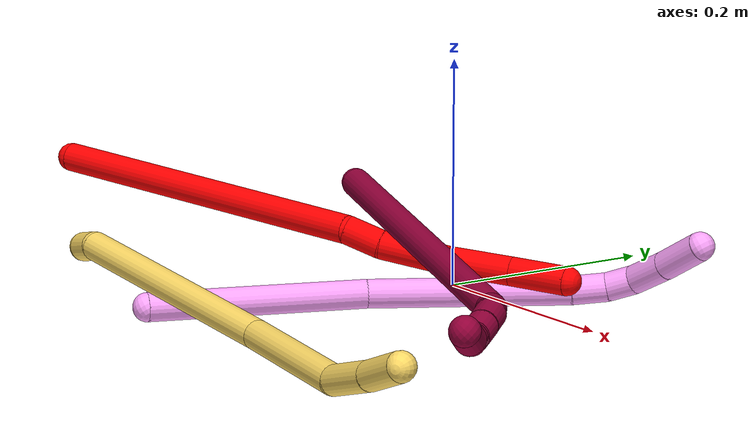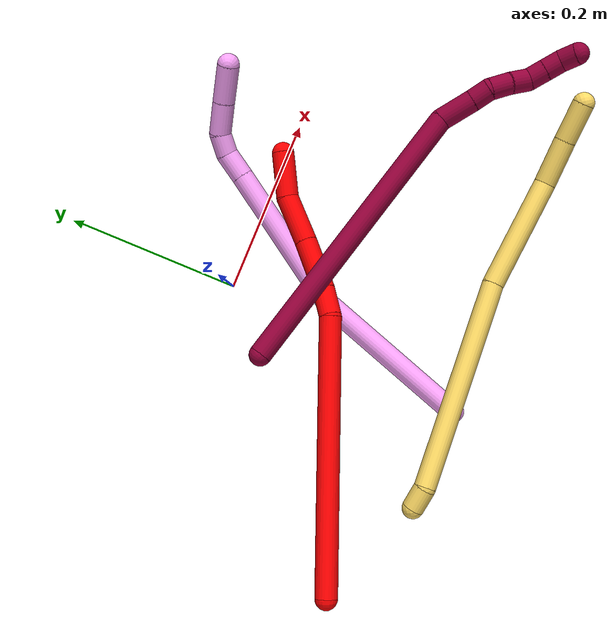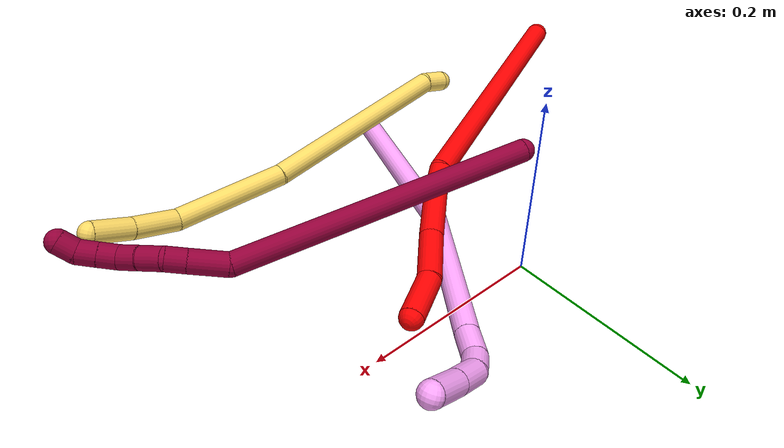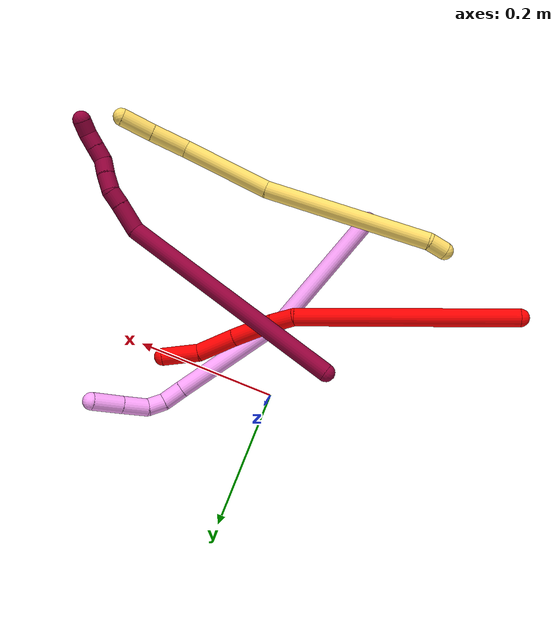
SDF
<sdf version="1.7">
 <world name="default">
  <model name="2">
   <static>0</static>
   <link name="2">
    <collision name="collision-cylinder-e_1_1_4">
     <pose>-0.004816 0.015484 -0.150433 -3.03902 -0.031833 0.601417</pose>
     <geometry><cylinder><radius>0.0125</radius><length>0.30261</length></cylinder></geometry>
     <surface>
      <friction><ode><mu>1.16</mu><mu2>1.16</mu2><slip1>0</slip1><slip2>0</slip2></ode></friction>
      <contact><ode><kp>1e+06</kp><kd>1</kd><max_vel>0</max_vel><min_depth>0.001</min_depth></ode></contact>
     </surface>
    </collision>
    <visual name="visual-cylinder-e_1_1_4">
     <pose>-0.004816 0.015484 -0.150433 -3.03902 -0.031833 0.601417</pose>
     <geometry><cylinder><radius>0.0125</radius><length>0.30261</length></cylinder></geometry>
     <material><ambient>1 0 0 1</ambient></material>
    </visual>
    <collision name="collision-cylinder-e_2_4_5">
     <pose>-0.006245 0.036367 -0.315957 -2.79801 0.20823 -1.08415</pose>
     <geometry><cylinder><radius>0.0125</radius><length>0.032761</length></cylinder></geometry>
     <surface>
      <friction><ode><mu>1.16</mu><mu2>1.16</mu2><slip1>0</slip1><slip2>0</slip2></ode></friction>
      <contact><ode><kp>1e+06</kp><kd>1</kd><max_vel>0</max_vel><min_depth>0.001</min_depth></ode></contact>
     </surface>
    </collision>
    <visual name="visual-cylinder-e_2_4_5">
     <pose>-0.006245 0.036367 -0.315957 -2.79801 0.20823 -1.08415</pose>
     <geometry><cylinder><radius>0.0125</radius><length>0.032761</length></cylinder></geometry>
     <material><ambient>1 0 0 1</ambient></material>
    </visual>
    <collision name="collision-cylinder-e_3_5_6">
     <pose>0.006646 0.047292 -0.358323 -2.94168 0.329103 -2.05492</pose>
     <geometry><cylinder><radius>0.0125</radius><length>0.058817</length></cylinder></geometry>
     <surface>
      <friction><ode><mu>1.16</mu><mu2>1.16</mu2><slip1>0</slip1><slip2>0</slip2></ode></friction>
      <contact><ode><kp>1e+06</kp><kd>1</kd><max_vel>0</max_vel><min_depth>0.001</min_depth></ode></contact>
     </surface>
    </collision>
    <visual name="visual-cylinder-e_3_5_6">
     <pose>0.006646 0.047292 -0.358323 -2.94168 0.329103 -2.05492</pose>
     <geometry><cylinder><radius>0.0125</radius><length>0.058817</length></cylinder></geometry>
     <material><ambient>1 0 0 1</ambient></material>
    </visual>
    <collision name="collision-cylinder-e_4_6_7">
     <pose>0.026093 0.056404 -0.41065 -2.99944 0.374358 -2.42245</pose>
     <geometry><cylinder><radius>0.0125</radius><length>0.054379</length></cylinder></geometry>
     <surface>
      <friction><ode><mu>1.16</mu><mu2>1.16</mu2><slip1>0</slip1><slip2>0</slip2></ode></friction>
      <contact><ode><kp>1e+06</kp><kd>1</kd><max_vel>0</max_vel><min_depth>0.001</min_depth></ode></contact>
     </surface>
    </collision>
    <visual name="visual-cylinder-e_4_6_7">
     <pose>0.026093 0.056404 -0.41065 -2.99944 0.374358 -2.42245</pose>
     <geometry><cylinder><radius>0.0125</radius><length>0.054379</length></cylinder></geometry>
     <material><ambient>1 0 0 1</ambient></material>
    </visual>
    <collision name="collision-cylinder-e_5_7_2">
     <pose>0.038232 0.061562 -0.461275 -3.08019 0.085496 -1.8962</pose>
     <geometry><cylinder><radius>0.0125</radius><length>0.051434</length></cylinder></geometry>
     <surface>
      <friction><ode><mu>1.16</mu><mu2>1.16</mu2><slip1>0</slip1><slip2>0</slip2></ode></friction>
      <contact><ode><kp>1e+06</kp><kd>1</kd><max_vel>0</max_vel><min_depth>0.001</min_depth></ode></contact>
     </surface>
    </collision>
    <visual name="visual-cylinder-e_5_7_2">
     <pose>0.038232 0.061562 -0.461275 -3.08019 0.085496 -1.8962</pose>
     <geometry><cylinder><radius>0.0125</radius><length>0.051434</length></cylinder></geometry>
     <material><ambient>1 0 0 1</ambient></material>
    </visual>
    <collision name="collision-sphere-2">
     <pose>0.040428 0.063134 -0.48685 0 -0 0</pose>
     <geometry><sphere><radius>0.0125</radius></sphere></geometry>
     <surface>
      <friction><ode><mu>1.16</mu><mu2>1.16</mu2><slip1>0</slip1><slip2>0</slip2></ode></friction>
      <contact><ode><kp>1e+06</kp><kd>1</kd><max_vel>0</max_vel><min_depth>0.001</min_depth></ode></contact>
     </surface>
    </collision>
    <visual name="visual-sphere-2">
     <pose>0.040428 0.063134 -0.48685 0 -0 0</pose>
     <geometry><sphere><radius>0.0125</radius></sphere></geometry>
     <material><ambient>1 0 0 1</ambient></material>
    </visual>
    <collision name="collision-sphere-7">
     <pose>0.036036 0.05999 -0.435701 0 -0 0</pose>
     <geometry><sphere><radius>0.0125</radius></sphere></geometry>
     <surface>
      <friction><ode><mu>1.16</mu><mu2>1.16</mu2><slip1>0</slip1><slip2>0</slip2></ode></friction>
      <contact><ode><kp>1e+06</kp><kd>1</kd><max_vel>0</max_vel><min_depth>0.001</min_depth></ode></contact>
     </surface>
    </collision>
    <visual name="visual-sphere-7">
     <pose>0.036036 0.05999 -0.435701 0 -0 0</pose>
     <geometry><sphere><radius>0.0125</radius></sphere></geometry>
     <material><ambient>1 0 0 1</ambient></material>
    </visual>
    <collision name="collision-sphere-6">
     <pose>0.016151 0.052819 -0.385599 0 -0 0</pose>
     <geometry><sphere><radius>0.0125</radius></sphere></geometry>
     <surface>
      <friction><ode><mu>1.16</mu><mu2>1.16</mu2><slip1>0</slip1><slip2>0</slip2></ode></friction>
      <contact><ode><kp>1e+06</kp><kd>1</kd><max_vel>0</max_vel><min_depth>0.001</min_depth></ode></contact>
     </surface>
    </collision>
    <visual name="visual-sphere-6">
     <pose>0.016151 0.052819 -0.385599 0 -0 0</pose>
     <geometry><sphere><radius>0.0125</radius></sphere></geometry>
     <material><ambient>1 0 0 1</ambient></material>
    </visual>
    <collision name="collision-sphere-5">
     <pose>-0.002859 0.041766 -0.331046 0 -0 0</pose>
     <geometry><sphere><radius>0.0125</radius></sphere></geometry>
     <surface>
      <friction><ode><mu>1.16</mu><mu2>1.16</mu2><slip1>0</slip1><slip2>0</slip2></ode></friction>
      <contact><ode><kp>1e+06</kp><kd>1</kd><max_vel>0</max_vel><min_depth>0.001</min_depth></ode></contact>
     </surface>
    </collision>
    <visual name="visual-sphere-5">
     <pose>-0.002859 0.041766 -0.331046 0 -0 0</pose>
     <geometry><sphere><radius>0.0125</radius></sphere></geometry>
     <material><ambient>1 0 0 1</ambient></material>
    </visual>
    <collision name="collision-sphere-1">
     <geometry><sphere><radius>0.0125</radius></sphere></geometry>
     <surface>
      <friction><ode><mu>1.16</mu><mu2>1.16</mu2><slip1>0</slip1><slip2>0</slip2></ode></friction>
      <contact><ode><kp>1e+06</kp><kd>1</kd><max_vel>0</max_vel><min_depth>0.001</min_depth></ode></contact>
     </surface>
    </collision>
    <visual name="visual-sphere-1">
     <geometry><sphere><radius>0.0125</radius></sphere></geometry>
     <material><ambient>1 0 0 1</ambient></material>
    </visual>
    <collision name="collision-sphere-4">
     <pose>-0.009631 0.030968 -0.300867 0 -0 0</pose>
     <geometry><sphere><radius>0.0125</radius></sphere></geometry>
     <surface>
      <friction><ode><mu>1.16</mu><mu2>1.16</mu2><slip1>0</slip1><slip2>0</slip2></ode></friction>
      <contact><ode><kp>1e+06</kp><kd>1</kd><max_vel>0</max_vel><min_depth>0.001</min_depth></ode></contact>
     </surface>
    </collision>
    <visual name="visual-sphere-4">
     <pose>-0.009631 0.030968 -0.300867 0 -0 0</pose>
     <geometry><sphere><radius>0.0125</radius></sphere></geometry>
     <material><ambient>1 0 0 1</ambient></material>
    </visual>
    <inertial>
     <pose>0.004229 0.029784 -0.24601 0 -0 0</pose>
     <mass>0.5</mass>
     <inertia>
      <ixx>0.003165</ixx>
      <ixy>0</ixy>
      <ixz>0</ixz>
      <iyy>-0.000599</iyy>
      <iyz>0</iyz>
      <izz>-0.000223</izz>
     </inertia>
    </inertial>
   </link>
   <pose>-0.271286 -0.227524 0.094287 -1.57854 0.003305 1.97951</pose>
  </model>
  <model name="4">
   <static>0</static>
   <link name="4">
    <collision name="collision-cylinder-e_1_1_4">
     <pose>0.075003 0.04784 0.033656 -0.957719 0.908453 -0.496532</pose>
     <geometry><cylinder><radius>0.0125</radius><length>0.190229</length></cylinder></geometry>
     <surface>
      <friction><ode><mu>1.16</mu><mu2>1.16</mu2><slip1>0</slip1><slip2>0</slip2></ode></friction>
      <contact><ode><kp>1e+06</kp><kd>1</kd><max_vel>0</max_vel><min_depth>0.001</min_depth></ode></contact>
     </surface>
    </collision>
    <visual name="visual-cylinder-e_1_1_4">
     <pose>0.075003 0.04784 0.033656 -0.957719 0.908453 -0.496532</pose>
     <geometry><cylinder><radius>0.0125</radius><length>0.190229</length></cylinder></geometry>
     <material><ambient>1 0.65098 0.996078 1</ambient></material>
    </visual>
    <collision name="collision-cylinder-e_2_4_5">
     <pose>0.202001 0.153567 0.105967 -0.982024 0.64156 -0.351638</pose>
     <geometry><cylinder><radius>0.0125</radius><length>0.173766</length></cylinder></geometry>
     <surface>
      <friction><ode><mu>1.16</mu><mu2>1.16</mu2><slip1>0</slip1><slip2>0</slip2></ode></friction>
      <contact><ode><kp>1e+06</kp><kd>1</kd><max_vel>0</max_vel><min_depth>0.001</min_depth></ode></contact>
     </surface>
    </collision>
    <visual name="visual-cylinder-e_2_4_5">
     <pose>0.202001 0.153567 0.105967 -0.982024 0.64156 -0.351638</pose>
     <geometry><cylinder><radius>0.0125</radius><length>0.173766</length></cylinder></geometry>
     <material><ambient>1 0.65098 0.996078 1</ambient></material>
    </visual>
    <collision name="collision-cylinder-e_3_5_6">
     <pose>0.263481 0.22219 0.150421 -1.07566 0.660833 -0.403609</pose>
     <geometry><cylinder><radius>0.0125</radius><length>0.03091</length></cylinder></geometry>
     <surface>
      <friction><ode><mu>1.16</mu><mu2>1.16</mu2><slip1>0</slip1><slip2>0</slip2></ode></friction>
      <contact><ode><kp>1e+06</kp><kd>1</kd><max_vel>0</max_vel><min_depth>0.001</min_depth></ode></contact>
     </surface>
    </collision>
    <visual name="visual-cylinder-e_3_5_6">
     <pose>0.263481 0.22219 0.150421 -1.07566 0.660833 -0.403609</pose>
     <geometry><cylinder><radius>0.0125</radius><length>0.03091</length></cylinder></geometry>
     <material><ambient>1 0.65098 0.996078 1</ambient></material>
    </visual>
    <collision name="collision-cylinder-e_4_6_7">
     <pose>0.277178 0.244214 0.159168 -1.31518 0.346372 -0.268567</pose>
     <geometry><cylinder><radius>0.0125</radius><length>0.024807</length></cylinder></geometry>
     <surface>
      <friction><ode><mu>1.16</mu><mu2>1.16</mu2><slip1>0</slip1><slip2>0</slip2></ode></friction>
      <contact><ode><kp>1e+06</kp><kd>1</kd><max_vel>0</max_vel><min_depth>0.001</min_depth></ode></contact>
     </surface>
    </collision>
    <visual name="visual-cylinder-e_4_6_7">
     <pose>0.277178 0.244214 0.159168 -1.31518 0.346372 -0.268567</pose>
     <geometry><cylinder><radius>0.0125</radius><length>0.024807</length></cylinder></geometry>
     <material><ambient>1 0.65098 0.996078 1</ambient></material>
    </visual>
    <collision name="collision-cylinder-e_5_7_8">
     <pose>0.279495 0.273896 0.164322 -1.45152 -0.101885 0.09042</pose>
     <geometry><cylinder><radius>0.0125</radius><length>0.037246</length></cylinder></geometry>
     <surface>
      <friction><ode><mu>1.16</mu><mu2>1.16</mu2><slip1>0</slip1><slip2>0</slip2></ode></friction>
      <contact><ode><kp>1e+06</kp><kd>1</kd><max_vel>0</max_vel><min_depth>0.001</min_depth></ode></contact>
     </surface>
    </collision>
    <visual name="visual-cylinder-e_5_7_8">
     <pose>0.279495 0.273896 0.164322 -1.45152 -0.101885 0.09042</pose>
     <geometry><cylinder><radius>0.0125</radius><length>0.037246</length></cylinder></geometry>
     <material><ambient>1 0.65098 0.996078 1</ambient></material>
    </visual>
    <collision name="collision-cylinder-e_6_8_2">
     <pose>0.275073 0.313616 0.167945 -1.50439 -0.117701 0.110149</pose>
     <geometry><cylinder><radius>0.0125</radius><length>0.043042</length></cylinder></geometry>
     <surface>
      <friction><ode><mu>1.16</mu><mu2>1.16</mu2><slip1>0</slip1><slip2>0</slip2></ode></friction>
      <contact><ode><kp>1e+06</kp><kd>1</kd><max_vel>0</max_vel><min_depth>0.001</min_depth></ode></contact>
     </surface>
    </collision>
    <visual name="visual-cylinder-e_6_8_2">
     <pose>0.275073 0.313616 0.167945 -1.50439 -0.117701 0.110149</pose>
     <geometry><cylinder><radius>0.0125</radius><length>0.043042</length></cylinder></geometry>
     <material><ambient>1 0.65098 0.996078 1</ambient></material>
    </visual>
    <collision name="collision-sphere-2">
     <pose>0.272546 0.334941 0.169363 0 -0 0</pose>
     <geometry><sphere><radius>0.0125</radius></sphere></geometry>
     <surface>
      <friction><ode><mu>1.16</mu><mu2>1.16</mu2><slip1>0</slip1><slip2>0</slip2></ode></friction>
      <contact><ode><kp>1e+06</kp><kd>1</kd><max_vel>0</max_vel><min_depth>0.001</min_depth></ode></contact>
     </surface>
    </collision>
    <visual name="visual-sphere-2">
     <pose>0.272546 0.334941 0.169363 0 -0 0</pose>
     <geometry><sphere><radius>0.0125</radius></sphere></geometry>
     <material><ambient>1 0.65098 0.996078 1</ambient></material>
    </visual>
    <collision name="collision-sphere-4">
     <pose>0.150006 0.09568 0.067312 0 -0 0</pose>
     <geometry><sphere><radius>0.0125</radius></sphere></geometry>
     <surface>
      <friction><ode><mu>1.16</mu><mu2>1.16</mu2><slip1>0</slip1><slip2>0</slip2></ode></friction>
      <contact><ode><kp>1e+06</kp><kd>1</kd><max_vel>0</max_vel><min_depth>0.001</min_depth></ode></contact>
     </surface>
    </collision>
    <visual name="visual-sphere-4">
     <pose>0.150006 0.09568 0.067312 0 -0 0</pose>
     <geometry><sphere><radius>0.0125</radius></sphere></geometry>
     <material><ambient>1 0.65098 0.996078 1</ambient></material>
    </visual>
    <collision name="collision-sphere-1">
     <geometry><sphere><radius>0.0125</radius></sphere></geometry>
     <surface>
      <friction><ode><mu>1.16</mu><mu2>1.16</mu2><slip1>0</slip1><slip2>0</slip2></ode></friction>
      <contact><ode><kp>1e+06</kp><kd>1</kd><max_vel>0</max_vel><min_depth>0.001</min_depth></ode></contact>
     </surface>
    </collision>
    <visual name="visual-sphere-1">
     <geometry><sphere><radius>0.0125</radius></sphere></geometry>
     <material><ambient>1 0.65098 0.996078 1</ambient></material>
    </visual>
    <collision name="collision-sphere-8">
     <pose>0.277601 0.292291 0.166527 0 -0 0</pose>
     <geometry><sphere><radius>0.0125</radius></sphere></geometry>
     <surface>
      <friction><ode><mu>1.16</mu><mu2>1.16</mu2><slip1>0</slip1><slip2>0</slip2></ode></friction>
      <contact><ode><kp>1e+06</kp><kd>1</kd><max_vel>0</max_vel><min_depth>0.001</min_depth></ode></contact>
     </surface>
    </collision>
    <visual name="visual-sphere-8">
     <pose>0.277601 0.292291 0.166527 0 -0 0</pose>
     <geometry><sphere><radius>0.0125</radius></sphere></geometry>
     <material><ambient>1 0.65098 0.996078 1</ambient></material>
    </visual>
    <collision name="collision-sphere-5">
     <pose>0.253995 0.211454 0.144623 0 -0 0</pose>
     <geometry><sphere><radius>0.0125</radius></sphere></geometry>
     <surface>
      <friction><ode><mu>1.16</mu><mu2>1.16</mu2><slip1>0</slip1><slip2>0</slip2></ode></friction>
      <contact><ode><kp>1e+06</kp><kd>1</kd><max_vel>0</max_vel><min_depth>0.001</min_depth></ode></contact>
     </surface>
    </collision>
    <visual name="visual-sphere-5">
     <pose>0.253995 0.211454 0.144623 0 -0 0</pose>
     <geometry><sphere><radius>0.0125</radius></sphere></geometry>
     <material><ambient>1 0.65098 0.996078 1</ambient></material>
    </visual>
    <collision name="collision-sphere-6">
     <pose>0.272967 0.232926 0.156218 0 -0 0</pose>
     <geometry><sphere><radius>0.0125</radius></sphere></geometry>
     <surface>
      <friction><ode><mu>1.16</mu><mu2>1.16</mu2><slip1>0</slip1><slip2>0</slip2></ode></friction>
      <contact><ode><kp>1e+06</kp><kd>1</kd><max_vel>0</max_vel><min_depth>0.001</min_depth></ode></contact>
     </surface>
    </collision>
    <visual name="visual-sphere-6">
     <pose>0.272967 0.232926 0.156218 0 -0 0</pose>
     <geometry><sphere><radius>0.0125</radius></sphere></geometry>
     <material><ambient>1 0.65098 0.996078 1</ambient></material>
    </visual>
    <collision name="collision-sphere-7">
     <pose>0.281389 0.255502 0.162118 0 -0 0</pose>
     <geometry><sphere><radius>0.0125</radius></sphere></geometry>
     <surface>
      <friction><ode><mu>1.16</mu><mu2>1.16</mu2><slip1>0</slip1><slip2>0</slip2></ode></friction>
      <contact><ode><kp>1e+06</kp><kd>1</kd><max_vel>0</max_vel><min_depth>0.001</min_depth></ode></contact>
     </surface>
    </collision>
    <visual name="visual-sphere-7">
     <pose>0.281389 0.255502 0.162118 0 -0 0</pose>
     <geometry><sphere><radius>0.0125</radius></sphere></geometry>
     <material><ambient>1 0.65098 0.996078 1</ambient></material>
    </visual>
    <inertial>
     <pose>0.173277 0.144823 0.093526 0 -0 0</pose>
     <mass>0.5</mass>
     <inertia>
      <ixx>0.000395</ixx>
      <ixy>0</ixy>
      <ixz>0</ixz>
      <iyy>0.000518</iyy>
      <iyz>0</iyz>
      <izz>-0.001319</izz>
     </inertia>
    </inertial>
   </link>
   <pose>-0.036083 -0.287525 0.012383 2.52998 0.004766 1.91158</pose>
  </model>
  <model name="5">
   <static>0</static>
   <link name="5">
    <collision name="collision-cylinder-e_1_1_4">
     <pose>0.009567 0.002441 0.008936 -0.266644 0.801521 -0.113526</pose>
     <geometry><cylinder><radius>0.0125</radius><length>0.026633</length></cylinder></geometry>
     <surface>
      <friction><ode><mu>1.16</mu><mu2>1.16</mu2><slip1>0</slip1><slip2>0</slip2></ode></friction>
      <contact><ode><kp>1e+06</kp><kd>1</kd><max_vel>0</max_vel><min_depth>0.001</min_depth></ode></contact>
     </surface>
    </collision>
    <visual name="visual-cylinder-e_1_1_4">
     <pose>0.009567 0.002441 0.008936 -0.266644 0.801521 -0.113526</pose>
     <geometry><cylinder><radius>0.0125</radius><length>0.026633</length></cylinder></geometry>
     <material><ambient>1 0.858824 0.4 1</ambient></material>
    </visual>
    <collision name="collision-cylinder-e_2_4_5">
     <pose>0.12062 -0.012671 0.082223 0.266278 0.989336 0.144234</pose>
     <geometry><cylinder><radius>0.0125</radius><length>0.242888</length></cylinder></geometry>
     <surface>
      <friction><ode><mu>1.16</mu><mu2>1.16</mu2><slip1>0</slip1><slip2>0</slip2></ode></friction>
      <contact><ode><kp>1e+06</kp><kd>1</kd><max_vel>0</max_vel><min_depth>0.001</min_depth></ode></contact>
     </surface>
    </collision>
    <visual name="visual-cylinder-e_2_4_5">
     <pose>0.12062 -0.012671 0.082223 0.266278 0.989336 0.144234</pose>
     <geometry><cylinder><radius>0.0125</radius><length>0.242888</length></cylinder></geometry>
     <material><ambient>1 0.858824 0.4 1</ambient></material>
    </visual>
    <collision name="collision-cylinder-e_3_5_6">
     <pose>0.271621 -0.035669 0.189299 0.126783 0.854912 0.057817</pose>
     <geometry><cylinder><radius>0.0125</radius><length>0.131251</length></cylinder></geometry>
     <surface>
      <friction><ode><mu>1.16</mu><mu2>1.16</mu2><slip1>0</slip1><slip2>0</slip2></ode></friction>
      <contact><ode><kp>1e+06</kp><kd>1</kd><max_vel>0</max_vel><min_depth>0.001</min_depth></ode></contact>
     </surface>
    </collision>
    <visual name="visual-cylinder-e_3_5_6">
     <pose>0.271621 -0.035669 0.189299 0.126783 0.854912 0.057817</pose>
     <geometry><cylinder><radius>0.0125</radius><length>0.131251</length></cylinder></geometry>
     <material><ambient>1 0.858824 0.4 1</ambient></material>
    </visual>
    <collision name="collision-cylinder-e_4_6_7">
     <pose>0.341574 -0.034316 0.247687 -0.409456 0.874749 -0.193566</pose>
     <geometry><cylinder><radius>0.0125</radius><length>0.053266</length></cylinder></geometry>
     <surface>
      <friction><ode><mu>1.16</mu><mu2>1.16</mu2><slip1>0</slip1><slip2>0</slip2></ode></friction>
      <contact><ode><kp>1e+06</kp><kd>1</kd><max_vel>0</max_vel><min_depth>0.001</min_depth></ode></contact>
     </surface>
    </collision>
    <visual name="visual-cylinder-e_4_6_7">
     <pose>0.341574 -0.034316 0.247687 -0.409456 0.874749 -0.193566</pose>
     <geometry><cylinder><radius>0.0125</radius><length>0.053266</length></cylinder></geometry>
     <material><ambient>1 0.858824 0.4 1</ambient></material>
    </visual>
    <collision name="collision-cylinder-e_5_7_2">
     <pose>0.37896 -0.019833 0.276837 -0.518003 0.829334 -0.232211</pose>
     <geometry><cylinder><radius>0.0125</radius><length>0.045962</length></cylinder></geometry>
     <surface>
      <friction><ode><mu>1.16</mu><mu2>1.16</mu2><slip1>0</slip1><slip2>0</slip2></ode></friction>
      <contact><ode><kp>1e+06</kp><kd>1</kd><max_vel>0</max_vel><min_depth>0.001</min_depth></ode></contact>
     </surface>
    </collision>
    <visual name="visual-cylinder-e_5_7_2">
     <pose>0.37896 -0.019833 0.276837 -0.518003 0.829334 -0.232211</pose>
     <geometry><cylinder><radius>0.0125</radius><length>0.045962</length></cylinder></geometry>
     <material><ambient>1 0.858824 0.4 1</ambient></material>
    </visual>
    <collision name="collision-sphere-2">
     <pose>0.395908 -0.012148 0.290321 0 -0 0</pose>
     <geometry><sphere><radius>0.0125</radius></sphere></geometry>
     <surface>
      <friction><ode><mu>1.16</mu><mu2>1.16</mu2><slip1>0</slip1><slip2>0</slip2></ode></friction>
      <contact><ode><kp>1e+06</kp><kd>1</kd><max_vel>0</max_vel><min_depth>0.001</min_depth></ode></contact>
     </surface>
    </collision>
    <visual name="visual-sphere-2">
     <pose>0.395908 -0.012148 0.290321 0 -0 0</pose>
     <geometry><sphere><radius>0.0125</radius></sphere></geometry>
     <material><ambient>1 0.858824 0.4 1</ambient></material>
    </visual>
    <collision name="collision-sphere-7">
     <pose>0.362012 -0.027518 0.263352 0 -0 0</pose>
     <geometry><sphere><radius>0.0125</radius></sphere></geometry>
     <surface>
      <friction><ode><mu>1.16</mu><mu2>1.16</mu2><slip1>0</slip1><slip2>0</slip2></ode></friction>
      <contact><ode><kp>1e+06</kp><kd>1</kd><max_vel>0</max_vel><min_depth>0.001</min_depth></ode></contact>
     </surface>
    </collision>
    <visual name="visual-sphere-7">
     <pose>0.362012 -0.027518 0.263352 0 -0 0</pose>
     <geometry><sphere><radius>0.0125</radius></sphere></geometry>
     <material><ambient>1 0.858824 0.4 1</ambient></material>
    </visual>
    <collision name="collision-sphere-6">
     <pose>0.321137 -0.041115 0.232022 0 -0 0</pose>
     <geometry><sphere><radius>0.0125</radius></sphere></geometry>
     <surface>
      <friction><ode><mu>1.16</mu><mu2>1.16</mu2><slip1>0</slip1><slip2>0</slip2></ode></friction>
      <contact><ode><kp>1e+06</kp><kd>1</kd><max_vel>0</max_vel><min_depth>0.001</min_depth></ode></contact>
     </surface>
    </collision>
    <visual name="visual-sphere-6">
     <pose>0.321137 -0.041115 0.232022 0 -0 0</pose>
     <geometry><sphere><radius>0.0125</radius></sphere></geometry>
     <material><ambient>1 0.858824 0.4 1</ambient></material>
    </visual>
    <collision name="collision-sphere-5">
     <pose>0.222106 -0.030223 0.146575 0 -0 0</pose>
     <geometry><sphere><radius>0.0125</radius></sphere></geometry>
     <surface>
      <friction><ode><mu>1.16</mu><mu2>1.16</mu2><slip1>0</slip1><slip2>0</slip2></ode></friction>
      <contact><ode><kp>1e+06</kp><kd>1</kd><max_vel>0</max_vel><min_depth>0.001</min_depth></ode></contact>
     </surface>
    </collision>
    <visual name="visual-sphere-5">
     <pose>0.222106 -0.030223 0.146575 0 -0 0</pose>
     <geometry><sphere><radius>0.0125</radius></sphere></geometry>
     <material><ambient>1 0.858824 0.4 1</ambient></material>
    </visual>
    <collision name="collision-sphere-1">
     <geometry><sphere><radius>0.0125</radius></sphere></geometry>
     <surface>
      <friction><ode><mu>1.16</mu><mu2>1.16</mu2><slip1>0</slip1><slip2>0</slip2></ode></friction>
      <contact><ode><kp>1e+06</kp><kd>1</kd><max_vel>0</max_vel><min_depth>0.001</min_depth></ode></contact>
     </surface>
    </collision>
    <visual name="visual-sphere-1">
     <geometry><sphere><radius>0.0125</radius></sphere></geometry>
     <material><ambient>1 0.858824 0.4 1</ambient></material>
    </visual>
    <collision name="collision-sphere-4">
     <pose>0.019134 0.004882 0.017872 0 -0 0</pose>
     <geometry><sphere><radius>0.0125</radius></sphere></geometry>
     <surface>
      <friction><ode><mu>1.16</mu><mu2>1.16</mu2><slip1>0</slip1><slip2>0</slip2></ode></friction>
      <contact><ode><kp>1e+06</kp><kd>1</kd><max_vel>0</max_vel><min_depth>0.001</min_depth></ode></contact>
     </surface>
    </collision>
    <visual name="visual-sphere-4">
     <pose>0.019134 0.004882 0.017872 0 -0 0</pose>
     <geometry><sphere><radius>0.0125</radius></sphere></geometry>
     <material><ambient>1 0.858824 0.4 1</ambient></material>
    </visual>
    <inertial>
     <pose>0.201629 -0.020867 0.141944 0 -0 0</pose>
     <mass>0.5</mass>
     <inertia>
      <ixx>0.000928</ixx>
      <ixy>0</ixy>
      <ixz>0</ixz>
      <iyy>0.001504</iyy>
      <iyz>0</iyz>
      <izz>-0.000967</izz>
     </inertia>
    </inertial>
   </link>
   <pose>-0.151724 -0.282937 0.041614 1.51018 0.006643 0.623624</pose>
  </model>
  <model name="8">
   <static>0</static>
   <link name="8">
    <collision name="collision-cylinder-e_1_1_4">
     <pose>0.133511 -0.081878 0.05238 1.00167 0.941508 0.543371</pose>
     <geometry><cylinder><radius>0.0125</radius><length>0.33029</length></cylinder></geometry>
     <surface>
      <friction><ode><mu>1.16</mu><mu2>1.16</mu2><slip1>0</slip1><slip2>0</slip2></ode></friction>
      <contact><ode><kp>1e+06</kp><kd>1</kd><max_vel>0</max_vel><min_depth>0.001</min_depth></ode></contact>
     </surface>
    </collision>
    <visual name="visual-cylinder-e_1_1_4">
     <pose>0.133511 -0.081878 0.05238 1.00167 0.941508 0.543371</pose>
     <geometry><cylinder><radius>0.0125</radius><length>0.33029</length></cylinder></geometry>
     <material><ambient>0.584314 0 0.227451 1</ambient></material>
    </visual>
    <collision name="collision-cylinder-e_2_4_5">
     <pose>0.285038 -0.172667 0.101861 1.88539 1.09119 1.39254</pose>
     <geometry><cylinder><radius>0.0125</radius><length>0.040614</length></cylinder></geometry>
     <surface>
      <friction><ode><mu>1.16</mu><mu2>1.16</mu2><slip1>0</slip1><slip2>0</slip2></ode></friction>
      <contact><ode><kp>1e+06</kp><kd>1</kd><max_vel>0</max_vel><min_depth>0.001</min_depth></ode></contact>
     </surface>
    </collision>
    <visual name="visual-cylinder-e_2_4_5">
     <pose>0.285038 -0.172667 0.101861 1.88539 1.09119 1.39254</pose>
     <geometry><cylinder><radius>0.0125</radius><length>0.040614</length></cylinder></geometry>
     <material><ambient>0.584314 0 0.227451 1</ambient></material>
    </visual>
    <collision name="collision-cylinder-e_3_5_6">
     <pose>0.31231 -0.186957 0.097335 1.86438 1.02508 1.29716</pose>
     <geometry><cylinder><radius>0.0125</radius><length>0.021658</length></cylinder></geometry>
     <surface>
      <friction><ode><mu>1.16</mu><mu2>1.16</mu2><slip1>0</slip1><slip2>0</slip2></ode></friction>
      <contact><ode><kp>1e+06</kp><kd>1</kd><max_vel>0</max_vel><min_depth>0.001</min_depth></ode></contact>
     </surface>
    </collision>
    <visual name="visual-cylinder-e_3_5_6">
     <pose>0.31231 -0.186957 0.097335 1.86438 1.02508 1.29716</pose>
     <geometry><cylinder><radius>0.0125</radius><length>0.021658</length></cylinder></geometry>
     <material><ambient>0.584314 0 0.227451 1</ambient></material>
    </visual>
    <collision name="collision-cylinder-e_4_6_7">
     <pose>0.333762 -0.193652 0.094486 2.32019 1.42463 2.20748</pose>
     <geometry><cylinder><radius>0.0125</radius><length>0.024654</length></cylinder></geometry>
     <surface>
      <friction><ode><mu>1.16</mu><mu2>1.16</mu2><slip1>0</slip1><slip2>0</slip2></ode></friction>
      <contact><ode><kp>1e+06</kp><kd>1</kd><max_vel>0</max_vel><min_depth>0.001</min_depth></ode></contact>
     </surface>
    </collision>
    <visual name="visual-cylinder-e_4_6_7">
     <pose>0.333762 -0.193652 0.094486 2.32019 1.42463 2.20748</pose>
     <geometry><cylinder><radius>0.0125</radius><length>0.024654</length></cylinder></geometry>
     <material><ambient>0.584314 0 0.227451 1</ambient></material>
    </visual>
    <collision name="collision-cylinder-e_5_7_8">
     <pose>0.357062 -0.194982 0.092113 3.12739 1.4676 3.12584</pose>
     <geometry><cylinder><radius>0.0125</radius><length>0.022328</length></cylinder></geometry>
     <surface>
      <friction><ode><mu>1.16</mu><mu2>1.16</mu2><slip1>0</slip1><slip2>0</slip2></ode></friction>
      <contact><ode><kp>1e+06</kp><kd>1</kd><max_vel>0</max_vel><min_depth>0.001</min_depth></ode></contact>
     </surface>
    </collision>
    <visual name="visual-cylinder-e_5_7_8">
     <pose>0.357062 -0.194982 0.092113 3.12739 1.4676 3.12584</pose>
     <geometry><cylinder><radius>0.0125</radius><length>0.022328</length></cylinder></geometry>
     <material><ambient>0.584314 0 0.227451 1</ambient></material>
    </visual>
    <collision name="collision-cylinder-e_6_8_9">
     <pose>0.377161 -0.199478 0.089089 1.967 1.07578 1.46144</pose>
     <geometry><cylinder><radius>0.0125</radius><length>0.020442</length></cylinder></geometry>
     <surface>
      <friction><ode><mu>1.16</mu><mu2>1.16</mu2><slip1>0</slip1><slip2>0</slip2></ode></friction>
      <contact><ode><kp>1e+06</kp><kd>1</kd><max_vel>0</max_vel><min_depth>0.001</min_depth></ode></contact>
     </surface>
    </collision>
    <visual name="visual-cylinder-e_6_8_9">
     <pose>0.377161 -0.199478 0.089089 1.967 1.07578 1.46144</pose>
     <geometry><cylinder><radius>0.0125</radius><length>0.020442</length></cylinder></geometry>
     <material><ambient>0.584314 0 0.227451 1</ambient></material>
    </visual>
    <collision name="collision-cylinder-e_7_9_10">
     <pose>0.394927 -0.208365 0.085305 1.97983 1.06972 1.46845</pose>
     <geometry><cylinder><radius>0.0125</radius><length>0.020003</length></cylinder></geometry>
     <surface>
      <friction><ode><mu>1.16</mu><mu2>1.16</mu2><slip1>0</slip1><slip2>0</slip2></ode></friction>
      <contact><ode><kp>1e+06</kp><kd>1</kd><max_vel>0</max_vel><min_depth>0.001</min_depth></ode></contact>
     </surface>
    </collision>
    <visual name="visual-cylinder-e_7_9_10">
     <pose>0.394927 -0.208365 0.085305 1.97983 1.06972 1.46845</pose>
     <geometry><cylinder><radius>0.0125</radius><length>0.020003</length></cylinder></geometry>
     <material><ambient>0.584314 0 0.227451 1</ambient></material>
    </visual>
    <collision name="collision-cylinder-e_8_10_2">
     <pose>0.410543 -0.217875 0.078175 2.3676 0.753361 1.54096</pose>
     <geometry><cylinder><radius>0.0125</radius><length>0.02001</length></cylinder></geometry>
     <surface>
      <friction><ode><mu>1.16</mu><mu2>1.16</mu2><slip1>0</slip1><slip2>0</slip2></ode></friction>
      <contact><ode><kp>1e+06</kp><kd>1</kd><max_vel>0</max_vel><min_depth>0.001</min_depth></ode></contact>
     </surface>
    </collision>
    <visual name="visual-cylinder-e_8_10_2">
     <pose>0.410543 -0.217875 0.078175 2.3676 0.753361 1.54096</pose>
     <geometry><cylinder><radius>0.0125</radius><length>0.02001</length></cylinder></geometry>
     <material><ambient>0.584314 0 0.227451 1</ambient></material>
    </visual>
    <collision name="collision-sphere-2">
     <pose>0.417388 -0.222976 0.072956 0 -0 0</pose>
     <geometry><sphere><radius>0.0125</radius></sphere></geometry>
     <surface>
      <friction><ode><mu>1.16</mu><mu2>1.16</mu2><slip1>0</slip1><slip2>0</slip2></ode></friction>
      <contact><ode><kp>1e+06</kp><kd>1</kd><max_vel>0</max_vel><min_depth>0.001</min_depth></ode></contact>
     </surface>
    </collision>
    <visual name="visual-sphere-2">
     <pose>0.417388 -0.222976 0.072956 0 -0 0</pose>
     <geometry><sphere><radius>0.0125</radius></sphere></geometry>
     <material><ambient>0.584314 0 0.227451 1</ambient></material>
    </visual>
    <collision name="collision-sphere-10">
     <pose>0.403699 -0.212774 0.083394 0 -0 0</pose>
     <geometry><sphere><radius>0.0125</radius></sphere></geometry>
     <surface>
      <friction><ode><mu>1.16</mu><mu2>1.16</mu2><slip1>0</slip1><slip2>0</slip2></ode></friction>
      <contact><ode><kp>1e+06</kp><kd>1</kd><max_vel>0</max_vel><min_depth>0.001</min_depth></ode></contact>
     </surface>
    </collision>
    <visual name="visual-sphere-10">
     <pose>0.403699 -0.212774 0.083394 0 -0 0</pose>
     <geometry><sphere><radius>0.0125</radius></sphere></geometry>
     <material><ambient>0.584314 0 0.227451 1</ambient></material>
    </visual>
    <collision name="collision-sphere-9">
     <pose>0.386155 -0.203957 0.087215 0 -0 0</pose>
     <geometry><sphere><radius>0.0125</radius></sphere></geometry>
     <surface>
      <friction><ode><mu>1.16</mu><mu2>1.16</mu2><slip1>0</slip1><slip2>0</slip2></ode></friction>
      <contact><ode><kp>1e+06</kp><kd>1</kd><max_vel>0</max_vel><min_depth>0.001</min_depth></ode></contact>
     </surface>
    </collision>
    <visual name="visual-sphere-9">
     <pose>0.386155 -0.203957 0.087215 0 -0 0</pose>
     <geometry><sphere><radius>0.0125</radius></sphere></geometry>
     <material><ambient>0.584314 0 0.227451 1</ambient></material>
    </visual>
    <collision name="collision-sphere-4">
     <pose>0.267022 -0.163756 0.104761 0 -0 0</pose>
     <geometry><sphere><radius>0.0125</radius></sphere></geometry>
     <surface>
      <friction><ode><mu>1.16</mu><mu2>1.16</mu2><slip1>0</slip1><slip2>0</slip2></ode></friction>
      <contact><ode><kp>1e+06</kp><kd>1</kd><max_vel>0</max_vel><min_depth>0.001</min_depth></ode></contact>
     </surface>
    </collision>
    <visual name="visual-sphere-4">
     <pose>0.267022 -0.163756 0.104761 0 -0 0</pose>
     <geometry><sphere><radius>0.0125</radius></sphere></geometry>
     <material><ambient>0.584314 0 0.227451 1</ambient></material>
    </visual>
    <collision name="collision-sphere-1">
     <geometry><sphere><radius>0.0125</radius></sphere></geometry>
     <surface>
      <friction><ode><mu>1.16</mu><mu2>1.16</mu2><slip1>0</slip1><slip2>0</slip2></ode></friction>
      <contact><ode><kp>1e+06</kp><kd>1</kd><max_vel>0</max_vel><min_depth>0.001</min_depth></ode></contact>
     </surface>
    </collision>
    <visual name="visual-sphere-1">
     <geometry><sphere><radius>0.0125</radius></sphere></geometry>
     <material><ambient>0.584314 0 0.227451 1</ambient></material>
    </visual>
    <collision name="collision-sphere-8">
     <pose>0.368166 -0.194999 0.090963 0 -0 0</pose>
     <geometry><sphere><radius>0.0125</radius></sphere></geometry>
     <surface>
      <friction><ode><mu>1.16</mu><mu2>1.16</mu2><slip1>0</slip1><slip2>0</slip2></ode></friction>
      <contact><ode><kp>1e+06</kp><kd>1</kd><max_vel>0</max_vel><min_depth>0.001</min_depth></ode></contact>
     </surface>
    </collision>
    <visual name="visual-sphere-8">
     <pose>0.368166 -0.194999 0.090963 0 -0 0</pose>
     <geometry><sphere><radius>0.0125</radius></sphere></geometry>
     <material><ambient>0.584314 0 0.227451 1</ambient></material>
    </visual>
    <collision name="collision-sphere-5">
     <pose>0.303054 -0.181577 0.098962 0 -0 0</pose>
     <geometry><sphere><radius>0.0125</radius></sphere></geometry>
     <surface>
      <friction><ode><mu>1.16</mu><mu2>1.16</mu2><slip1>0</slip1><slip2>0</slip2></ode></friction>
      <contact><ode><kp>1e+06</kp><kd>1</kd><max_vel>0</max_vel><min_depth>0.001</min_depth></ode></contact>
     </surface>
    </collision>
    <visual name="visual-sphere-5">
     <pose>0.303054 -0.181577 0.098962 0 -0 0</pose>
     <geometry><sphere><radius>0.0125</radius></sphere></geometry>
     <material><ambient>0.584314 0 0.227451 1</ambient></material>
    </visual>
    <collision name="collision-sphere-6">
     <pose>0.321566 -0.192337 0.095709 0 -0 0</pose>
     <geometry><sphere><radius>0.0125</radius></sphere></geometry>
     <surface>
      <friction><ode><mu>1.16</mu><mu2>1.16</mu2><slip1>0</slip1><slip2>0</slip2></ode></friction>
      <contact><ode><kp>1e+06</kp><kd>1</kd><max_vel>0</max_vel><min_depth>0.001</min_depth></ode></contact>
     </surface>
    </collision>
    <visual name="visual-sphere-6">
     <pose>0.321566 -0.192337 0.095709 0 -0 0</pose>
     <geometry><sphere><radius>0.0125</radius></sphere></geometry>
     <material><ambient>0.584314 0 0.227451 1</ambient></material>
    </visual>
    <collision name="collision-sphere-7">
     <pose>0.345957 -0.194966 0.093263 0 -0 0</pose>
     <geometry><sphere><radius>0.0125</radius></sphere></geometry>
     <surface>
      <friction><ode><mu>1.16</mu><mu2>1.16</mu2><slip1>0</slip1><slip2>0</slip2></ode></friction>
      <contact><ode><kp>1e+06</kp><kd>1</kd><max_vel>0</max_vel><min_depth>0.001</min_depth></ode></contact>
     </surface>
    </collision>
    <visual name="visual-sphere-7">
     <pose>0.345957 -0.194966 0.093263 0 -0 0</pose>
     <geometry><sphere><radius>0.0125</radius></sphere></geometry>
     <material><ambient>0.584314 0 0.227451 1</ambient></material>
    </visual>
    <inertial>
     <pose>0.204928 -0.119677 0.066048 0 -0 0</pose>
     <mass>0.5</mass>
     <inertia>
      <ixx>0.002477</ixx>
      <ixy>0</ixy>
      <ixz>0</ixz>
      <iyy>0.003374</iyy>
      <iyz>0</iyz>
      <izz>-0.000946</izz>
     </inertia>
    </inertial>
   </link>
   <pose>-0.058792 -0.062829 0.088716 -2.39237 0.2629 -0.879445</pose>
  </model>
 </world>
</sdf>
